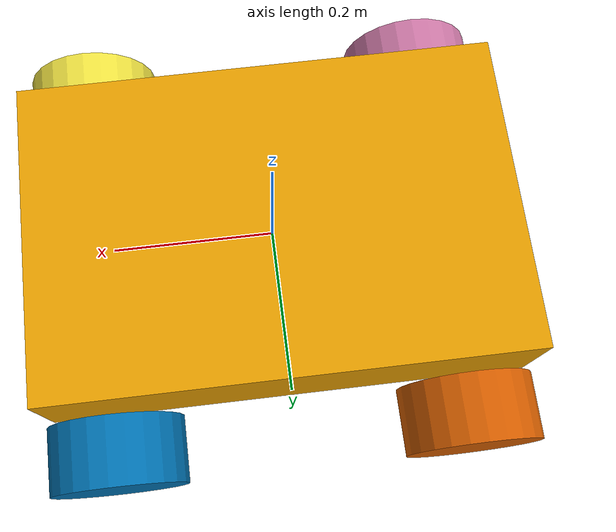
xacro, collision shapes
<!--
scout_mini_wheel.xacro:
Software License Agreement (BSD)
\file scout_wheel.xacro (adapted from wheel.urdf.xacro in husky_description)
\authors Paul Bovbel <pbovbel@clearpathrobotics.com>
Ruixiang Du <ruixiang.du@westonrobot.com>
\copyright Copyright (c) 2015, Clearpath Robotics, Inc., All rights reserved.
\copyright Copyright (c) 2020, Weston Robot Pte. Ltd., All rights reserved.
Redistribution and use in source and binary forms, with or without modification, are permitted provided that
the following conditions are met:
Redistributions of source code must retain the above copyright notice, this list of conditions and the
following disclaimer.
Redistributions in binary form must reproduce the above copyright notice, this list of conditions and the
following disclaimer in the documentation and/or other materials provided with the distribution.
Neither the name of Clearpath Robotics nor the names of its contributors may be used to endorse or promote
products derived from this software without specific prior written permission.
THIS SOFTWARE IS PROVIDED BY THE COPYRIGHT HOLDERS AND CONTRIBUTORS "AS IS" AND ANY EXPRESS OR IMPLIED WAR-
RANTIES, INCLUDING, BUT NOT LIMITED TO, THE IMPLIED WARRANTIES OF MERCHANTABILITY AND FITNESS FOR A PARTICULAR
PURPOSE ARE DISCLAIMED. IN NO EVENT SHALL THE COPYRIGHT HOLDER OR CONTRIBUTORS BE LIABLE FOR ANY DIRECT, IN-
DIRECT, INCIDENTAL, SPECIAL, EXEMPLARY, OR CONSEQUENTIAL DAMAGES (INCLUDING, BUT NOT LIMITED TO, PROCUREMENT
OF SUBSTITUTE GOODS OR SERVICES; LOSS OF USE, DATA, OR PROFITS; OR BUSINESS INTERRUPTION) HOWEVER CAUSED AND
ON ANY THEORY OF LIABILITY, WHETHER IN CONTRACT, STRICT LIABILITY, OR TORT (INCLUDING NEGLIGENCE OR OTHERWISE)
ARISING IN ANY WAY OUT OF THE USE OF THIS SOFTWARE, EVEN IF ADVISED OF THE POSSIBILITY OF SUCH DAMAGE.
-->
<?xml version="1.0"?>

<robot name="scout_mini"
    xmlns:xacro="http://ros.org/wiki/xacro">

    <xacro:arg name="robot_namespace" default="/" />

    <xacro:include filename="$(find scout_description)/urdf/scout_mini/scout_mini_wheel.xacro" />

    <!-- Variables -->
    <xacro:property name="M_PI" value="3.14159"/>

    <!-- Vehicle Geometries -->
    <xacro:property name="base_x_size" value="0.595000" />
    <xacro:property name="base_y_size" value="0.395000" />
    <xacro:property name="base_z_size" value="0.130000" />

    <xacro:property name="wheelbase" value="0.452" />
    <xacro:property name="track" value="0.49" />
    <xacro:property name="wheel_vertical_offset" value="-0.0905" />

    <xacro:property name="wheel_length" value="0.8520e-01" />
    <xacro:property name="wheel_radius" value="0.8750e-01" />

    <!-- Base link -->
    <link name="base_link">
        <visual>
            <origin xyz="0 0 0" rpy="0 0 0" />
            <geometry>
                <mesh filename="package://scout_description/meshes/scout_mini/mini_base_link.dae" />
            </geometry>
        </visual>
        <collision>
            <origin xyz="0 0 0.008" rpy="0 0 0" />
            <geometry>
                <box size="${base_x_size} ${base_y_size} ${base_z_size}"/>
            </geometry>
        </collision>
    </link>

    <link name="base_footprint"/>

    <joint name="base_footprint_joint" type="fixed">
        <origin xyz="0 0 ${wheel_vertical_offset - wheel_radius}" rpy="0 0 0" />
        <parent link="base_link" />
        <child link="base_footprint" />
    </joint>

    <link name="inertial_link">
        <inertial>
            <mass value="18" />
            <origin xyz="0.0 0.0 0.0" />
            <inertia ixx="2.288641" ixy="0" ixz="0" iyy="5.103976" iyz="0" izz="3.431465" />
        </inertial>
    </link>

    <joint name="inertial_joint" type="fixed">
        <origin xyz="0 0 0" rpy="0 0 0" />
        <parent link="base_link" />
        <child link="inertial_link" />
    </joint>

    <!-- Scout wheel macros -->
    <!-- wheel labeled from 0 to 3, conter-clockwise, starting from front right wheel -->
    <!-- motor 1 and 2 (left side) are mechanically installed in a reversed direction -->
    <xacro:scout_mini_wheel wheel_prefix="front_right">
        <origin xyz="${wheelbase/2} ${-track/2} ${wheel_vertical_offset}" rpy="3.14 0 0" />
    </xacro:scout_mini_wheel>
    <xacro:scout_mini_wheel wheel_prefix="front_left">
        <origin xyz="${wheelbase/2} ${track/2} ${wheel_vertical_offset}" rpy="0 0 0" />
    </xacro:scout_mini_wheel>
    <xacro:scout_mini_wheel wheel_prefix="rear_left">
        <origin xyz="${-wheelbase/2} ${track/2} ${wheel_vertical_offset}" rpy="0 0 0" />
    </xacro:scout_mini_wheel>
    <xacro:scout_mini_wheel wheel_prefix="rear_right">
        <origin xyz="${-wheelbase/2} ${-track/2} ${wheel_vertical_offset}" rpy="3.14 0 0" />
    </xacro:scout_mini_wheel>

</robot>

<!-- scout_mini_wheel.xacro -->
<robot xmlns:xacro="http://ros.org/wiki/xacro" name="scout_mini_wheel">

    <xacro:macro name="scout_mini_wheel" params="wheel_prefix *joint_pose">
        <link name="${wheel_prefix}_wheel_link">
            <inertial>
                <mass value="1" />
                <origin xyz="0 0 0" />
                <inertia ixx="0.7171" ixy="0" ixz="0" iyy="0.1361" iyz="0" izz="0.7171" />
            </inertial>
            <visual>
                <origin xyz="${-0.452/2 + 0.005} ${-0.49/2 + 0.02} 0.0925" rpy="0 0 0" />
                <geometry>
                    <mesh filename="package://scout_description/meshes/scout_mini/mini_wheel.dae" />
                </geometry>
            </visual>
            <collision>
                <origin xyz="0 0 0" rpy="${M_PI/2} 0 0" />
                <geometry>
                    <cylinder length="${wheel_length}" radius="${wheel_radius}" />
                </geometry>
            </collision>
        </link>

        <joint name="${wheel_prefix}_wheel" type="continuous">
            <parent link="base_link"/>
            <child link="${wheel_prefix}_wheel_link"/>
            <xacro:insert_block name="joint_pose"/>
            <axis xyz="0 -1 0" rpy="0 0 0" />
        </joint>
    </xacro:macro>

</robot>
